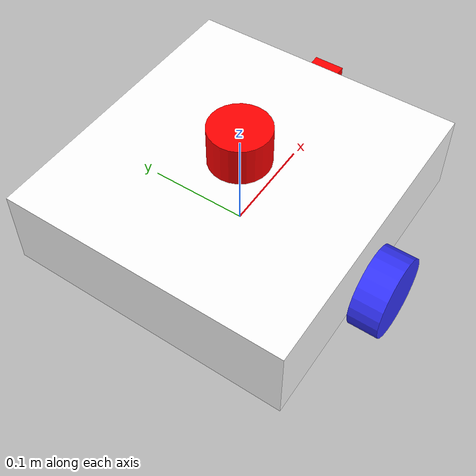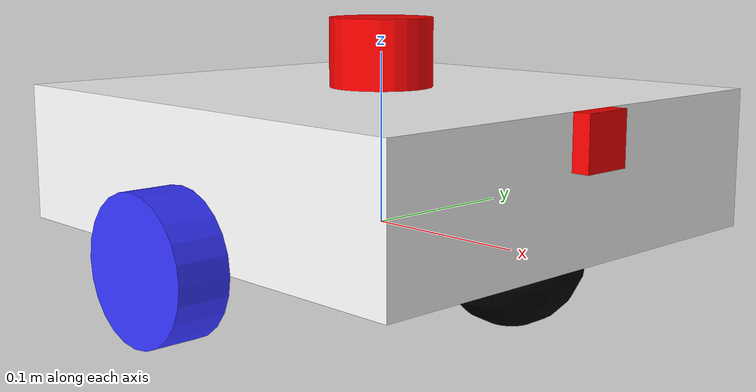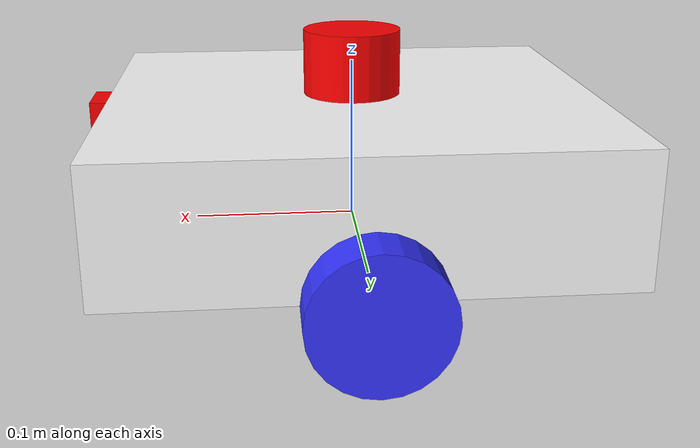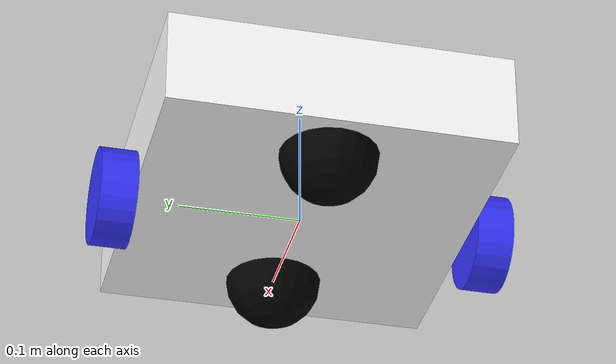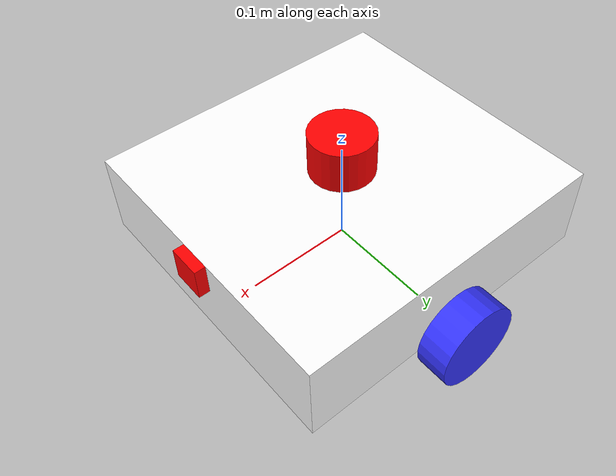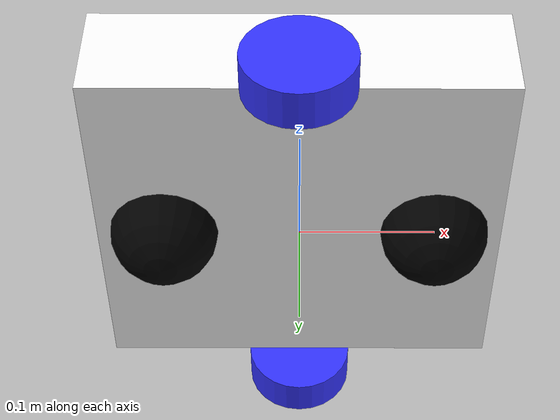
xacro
<?xml version="1.0"?>
<robot xmlns:xacro="http://www.ros.org/wiki/xacro"  name="robot">

    <xacro:include filename="robot_core.xacro"/>

    <xacro:include filename="gazebo_control.xacro"/>
    <xacro:include filename="lidar.xacro"/>
    <xacro:include filename="camera.xacro"/>

</robot>

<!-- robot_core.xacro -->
<robot xmlns:xacro="http://www.ros.org/wiki/xacro">

	<xacro:include filename="inertial_macros.xacro"/>

	<material name="white">
   		<color rgba="1 1 1 1"/>
  	</material>

  	<material name="orange">
   		<color rgba="1 0.3 0.1 1"/>
  	</material>

	<material name="red">
   		<color rgba="1 0 0 1"/>
  	</material>

	<material name="blue">
   		<color rgba="0.2 0.2 1 1"/>
  	</material>

	<material name="green">
   		<color rgba="0 0.84 0 1"/>
  	</material>

	<material name="black">
   		<color rgba="0 0 0 1"/>
  	</material>

  	<material name="grey">
   		<color rgba="0.5 0.5 0.5 1"/>
  	</material>

	<!-- BASE LINK -->

	<link name="base_link">

	</link>

	<!-- BASE_FOOTPRINT LINK -->

	<joint name="base_footprint_joint" type="fixed">
		<parent link="base_link"/>
		<child link="base_footprint"/>
		<origin xyz="0 0 0" rpy="0 0 0"/>
	</joint>

	<link name="base_footprint">

	</link>

	<!-- CHASSIS LINK -->

	<joint name="chassis_joint" type="fixed">
		<parent link="base_link"/>
		<child link="chassis"/>
		<origin xyz="0 0 0" rpy="0 0 0"/>
	</joint>

	<link name="chassis">
		<visual>
			<origin xyz="0 0 0.04"/>
			<geometry>
				<box size="0.3 0.28 0.08"/>
			</geometry>
			<material name="white"/>
		</visual>
		<collision>
			<origin xyz="0 0 0.04"/>
			<geometry>
				<box size="0.3 0.28 0.08"/>
			</geometry>
			<material name="white"/>
		</collision>
		<xacro:inertial_box mass="2" x="0.3" y="0.28" z="0.08">
			<origin xyz="0 0 0.04" rpy="0 0 0"/>
		</xacro:inertial_box>
	</link>

	<gazebo reference="chassis">
		<material>Gazebo/White</material>
	</gazebo>

	<!-- LEFT WHEEL LINK -->

	<joint name="left_wheel_joint" type="continuous">
		<parent link="chassis"/>
		<child link="left_wheel"/>
		<origin xyz="0 0.155 0" rpy="-${pi/2} 0 0"/>
		<axis xyz="0 0 1"/>
	</joint>

	<link name="left_wheel">
		<visual>
			<geometry>
				<cylinder radius="0.04" length="0.03"/>
			</geometry>
			<material name="blue"/>
		</visual>
		<collision>
			<geometry>
				<cylinder radius="0.04" length="0.03"/>
			</geometry>
			<material name="blue"/>
		</collision>
		<xacro:inertial_cylinder mass="0.5" radius="0.04" length="0.03">
			<origin xyz="0 0 0" rpy="0 0 0"/>
		</xacro:inertial_cylinder>
	</link>

	<gazebo reference="left_wheel">
		<material>Gazebo/Blue</material>
	</gazebo>

	<!-- RIGHT WHEEL LINK -->

	<joint name="right_wheel_joint" type="continuous">
		<parent link="chassis"/>
		<child link="right_wheel"/>
		<origin xyz="0 -0.155 0" rpy="${pi/2} 0 0"/>
		<axis xyz="0 0 -1"/>
	</joint>

	<link name="right_wheel">
		<visual>
			<geometry>
				<cylinder radius="0.04" length="0.03"/>
			</geometry>
			<material name="blue"/>
		</visual>
		<collision>
			<geometry>
				<cylinder radius="0.04" length="0.03"/>
			</geometry>
			<material name="blue"/>
		</collision>
		<xacro:inertial_cylinder mass="0.5" radius="0.04" length="0.03">
			<origin xyz="0 0 0" rpy="0 0 0"/>
		</xacro:inertial_cylinder>
	</link>

	<gazebo reference="right_wheel">
		<material>Gazebo/Blue</material>
	</gazebo>

	<!-- CASTER WHEEL LINK BACK -->

	<joint name="caster_wheel_joint_back" type="fixed">
		<parent link="chassis"/>
		<child link="caster_wheel_back"/>
		<origin xyz="-0.1 0 0"/>
	</joint>

	<link name="caster_wheel_back">
		<visual>
			<geometry>
				<sphere radius="0.04"/>
			</geometry>
			<material name="black"/>
		</visual>
		<collision>
			<geometry>
				<sphere radius="0.04"/>
			</geometry>
			<material name="black"/>
		</collision>
		<xacro:inertial_sphere mass="0.1" radius="0.04">
			<origin xyz="0 0 0" rpy="0 0 0"/>
		</xacro:inertial_sphere>
	</link>

	<gazebo reference="caster_wheel_back">
		<material>Gazebo/Black</material>
		<mu1 value="0.001"/>
		<mu2 value="0.001"/>
	</gazebo>

	<!-- CASTER WHEEL LINK 2 -->

	<joint name="caster_wheel_joint_front" type="fixed">
		<parent link="chassis"/>
		<child link="caster_wheel_front"/>
		<origin xyz="0.1 0 0"/>
	</joint>

	<link name="caster_wheel_front">
		<visual>
			<geometry>
				<sphere radius="0.04"/>
			</geometry>
			<material name="black"/>
		</visual>
		<collision>
			<geometry>
				<sphere radius="0.04"/>
			</geometry>
			<material name="black"/>
		</collision>
		<xacro:inertial_sphere mass="0.1" radius="0.04">
			<origin xyz="0 0 0" rpy="0 0 0"/>
		</xacro:inertial_sphere>
	</link>

	<gazebo reference="caster_wheel_front">
		<material>Gazebo/Black</material>
		<mu1 value="0.001"/>
		<mu2 value="0.001"/>
	</gazebo>

</robot>

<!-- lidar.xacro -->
<robot xmlns:xacro="http://www.ros.org/wiki/xacro">

	<joint name="lidar_joint" type="fixed">
		<parent link="chassis"/>
		<child link="lidar_frame"/>
		<origin xyz="0 0 0.1" rpy="0 0 0"/>
	</joint>

	<link name="lidar_frame">
		<visual>
			<geometry>
				<cylinder radius="0.03" length="0.04"/>
			</geometry>
			<material name="red"/>
		</visual>
		<collision>
			<geometry>
				<cylinder radius="0.03" length="0.04"/>
			</geometry>
			<material name="red"/>
		</collision>
		<xacro:inertial_cylinder mass="0.1" radius="0.03" length="0.04">
			<origin xyz="0 0 0" rpy="0 0 0"/>
		</xacro:inertial_cylinder>
	</link>

	<gazebo reference="lidar_frame">
		<material>Gazebo/Red</material>

        <sensor name="laser" type="gpu_lidar">
            <visualize>false</visualize>
            <update_rate>10</update_rate>
            <lidar>
                <scan>
                    <horizontal>
                        <samples>360</samples>
                        <min_angle>-3.14</min_angle>
                        <max_angle>3.14</max_angle>
                    </horizontal>
                </scan>
                <range>
                    <min>0.1</min>
                    <max>8</max>
                </range>
            </lidar>
            <topic>scan</topic>
            <gz_frame_id>lidar_frame</gz_frame_id>
        </sensor>
    </gazebo>

</robot>

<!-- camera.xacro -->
<robot xmlns:xacro="http://www.ros.org/wiki/xacro">

	<!-- CAMERA LINK -->

	<joint name="camera_joint" type="fixed">
		<parent link="chassis"/>
		<child link="camera_link"/>
		<origin xyz="0.155 0 0.065" rpy="0 0 0"/>
	</joint>

	<link name="camera_link">
		<visual>
			<geometry>
				<box size="0.010 0.03 0.03"/>
			</geometry>
			<material name="red"/>
		</visual>
	</link>

	<!-- OPTICAL LINK -->

	<joint name="camera_optical_joint" type="fixed">
		<parent link="camera_link"/>
		<child link="camera_optical_link"/>
		<origin xyz="0 0 0" rpy="${-pi/2} 0 ${-pi/2}"/>
	</joint>

	<link name="camera_optical_link"></link>

	<gazebo reference="camera_link">
		<material>Gazebo/Grey</material>
        <sensor name="camera" type="camera">
            <pose> 0 0 0 0 0 0 </pose>
            <visualize>true</visualize>
            <update_rate>10</update_rate>
			<camera>
				<camera_info_topic>camera/camera_info</camera_info_topic>
                <horizontal_fov>1.089</horizontal_fov>
                <image>
                    <format>R8G8B8</format>
                    <width>640</width>
                    <height>480</height>
                </image>
                <clip>
                    <near>0.05</near>
                    <far>8.0</far>
                </clip>
            </camera>
            <topic>camera/image_raw</topic>
            <gz_frame_id>camera_optical_link</gz_frame_id>
        </sensor>
    </gazebo>

</robot>
